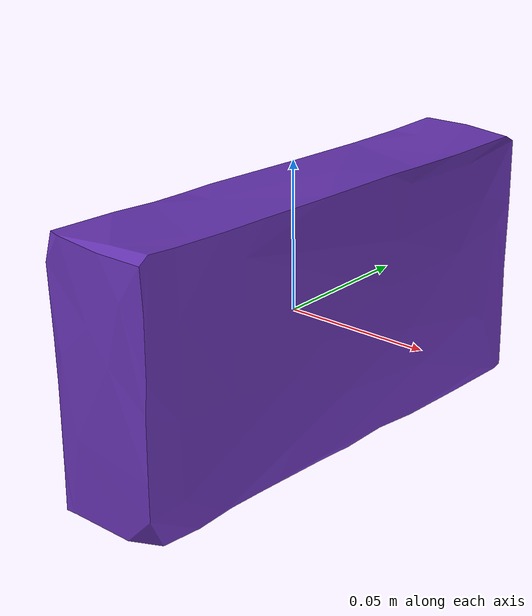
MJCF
<mujoco model="top_watertight_tiny">

  <asset>
    <mesh file="top_watertight_tiny.obj"/>
    <mesh file="top_watertight_tiny_collision_0.obj"/>
    <mesh file="top_watertight_tiny_collision_1.obj"/>
  </asset>
  <worldbody>
    <body name="top_watertight_tiny">
      <freejoint/>
      <geom solimp="0.90 0.95 0.001" solref="0.02 1.0" density="100" friction="0.95 0.4 0.3" rgba="0.4 0.2 0.7 1" mesh="top_watertight_tiny" group="2" type="mesh" contype="0" conaffinity="0"/>
      <geom solimp="0.90 0.95 0.001" solref="0.02 1.0" density="100" friction="0.95 0.4 0.3" mesh="top_watertight_tiny_collision_0" rgba="0.8896358654630089 0.8491108213422717 0.3048972625632195 1" group="3" type="mesh"/>
      <geom solimp="0.90 0.95 0.001" solref="0.02 1.0" density="100" friction="0.95 0.4 0.3" mesh="top_watertight_tiny_collision_1" rgba="0.19269465632150728 0.328847430879706 0.15636810563261516 1" group="3" type="mesh"/>
    </body>
  </worldbody>
</mujoco>
